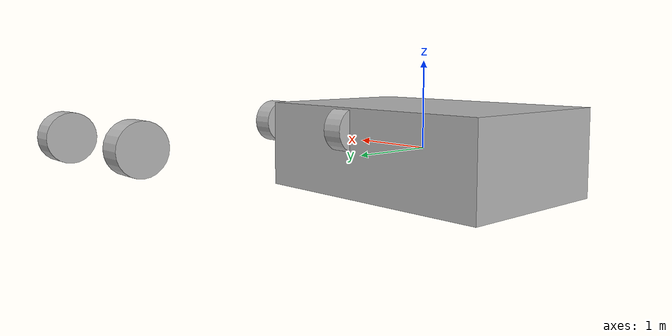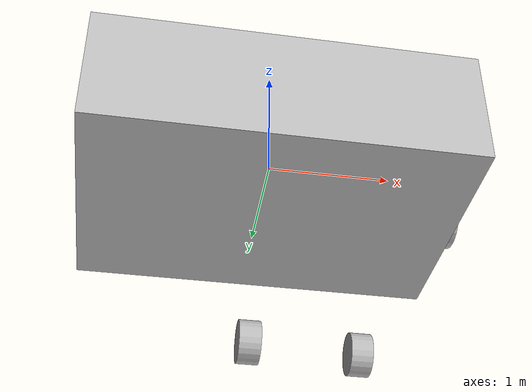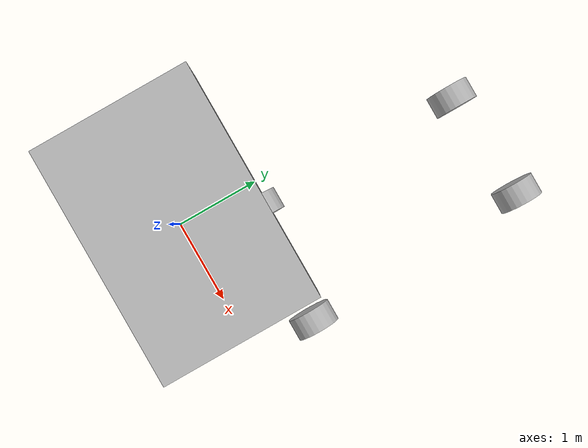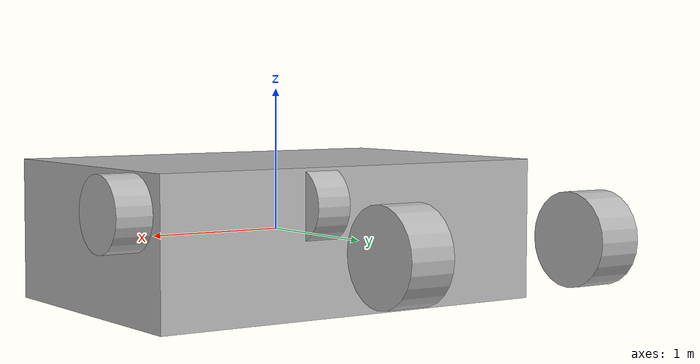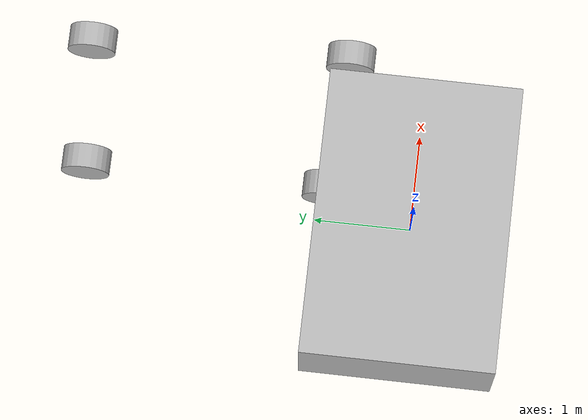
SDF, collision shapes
<?xml version='1.0'?>
<sdf version='1.4'>
  <model name="my_robot">
<static>true</static>
<link name='chassis'>
            <pose>0 0 0 0 0 0</pose>

            <collision name='collision'>
              <geometry>
                <box>
                  <size>3 2 1</size>
                </box>
              </geometry>
            </collision>

          <visual name="visual">
          <pose>0 0 -0.155 0 0 0</pose>
        <geometry>
          <mesh>
            <uri>model://car_polo/meshes/Polo.dae</uri>
      	    <scale>0.04 0.04 0.04</scale>
          </mesh>
        </geometry>
      </visual>

</link>
<link name="left_wheel">
        <pose>1.6 3.5 0.25 1.5707 0 1.5707</pose>
        <collision name="collision">
          <geometry>
            <cylinder>
              <radius>.25</radius>
              <length>0.25</length>
            </cylinder>
          </geometry>
        </collision>
        <visual name="visual">
          <geometry>
            <cylinder>
              <radius>.25</radius>
              <length>0.25</length>
            </cylinder>
          </geometry>
        </visual>
      </link>
  <link name="right_wheel">
        <pose>1.7 0.8 0.25 1.5707 0 1.5707</pose>
        <collision name="collision">
          <geometry>
            <cylinder>
              <radius>.25</radius>
              <length>.25</length>
            </cylinder>
          </geometry>
        </collision>
        <visual name="visual">
          <geometry>
            <cylinder>
              <radius>.25</radius>
              <length>.25</length>
            </cylinder>
          </geometry>
        </visual>
      </link>
 <link name="front right wheel">
        <pose>0.3 3.4 0.25 1.5707 0 1.5707</pose>
        <collision name="collision">
          <geometry>
            <cylinder>
              <radius>.25</radius>
              <length>.25</length>
            </cylinder>
          </geometry>
        </collision>
        <visual name="visual">
          <geometry>
            <cylinder>
              <radius>.25</radius>
              <length>.25</length>
            </cylinder>
          </geometry>
        </visual>
      </link>
 <link name="front left wheel">
        <pose>0.3 0.9 0.25 1.5707 0 1.5707</pose>
        <collision name="collision">
          <geometry>
            <cylinder>
              <radius>.25</radius>
              <length>.25</length>
            </cylinder>
          </geometry>
        </collision>
        <visual name="visual">
          <geometry>
            <cylinder>
              <radius>.25</radius>
              <length>.25</length>
            </cylinder>
          </geometry>
        </visual>
      </link>
<joint type="revolute" name="left_wheel_hinge">
        <pose>0 0 -0.03 0 0 0</pose>
        <child>left_wheel</child>
        <parent>chassis</parent>
        <axis>
          <xyz>0 1 0</xyz>
        </axis>
      </joint>

      <joint type="revolute" name="right_wheel_hinge">
        <pose>0 0 0.03 0 0 0</pose>
        <child>right_wheel</child>
        <parent>chassis</parent>
        <axis>
          <xyz>0 1 0</xyz>
        </axis>
      </joint>
<joint type="revolute" name="front_left_wheel_hinge">
        <pose>0 0 -0.03 0 0 0</pose>
        <child>left_wheel</child>
        <parent>chassis</parent>
        <axis>
          <xyz>0 1 0</xyz>
        </axis>
      </joint>

      <joint type="revolute" name="front_right_wheel_hinge">
        <pose>0 0 0.03 0 0 0</pose>
        <child>right_wheel</child>
        <parent>chassis</parent>
        <axis>
          <xyz>0 1 0</xyz>
        </axis>
      </joint>

  </model>
</sdf>
